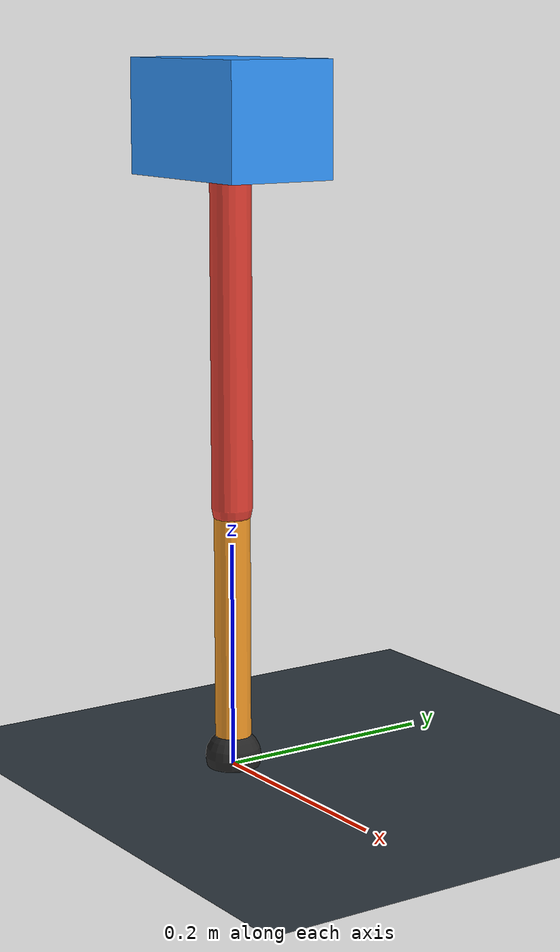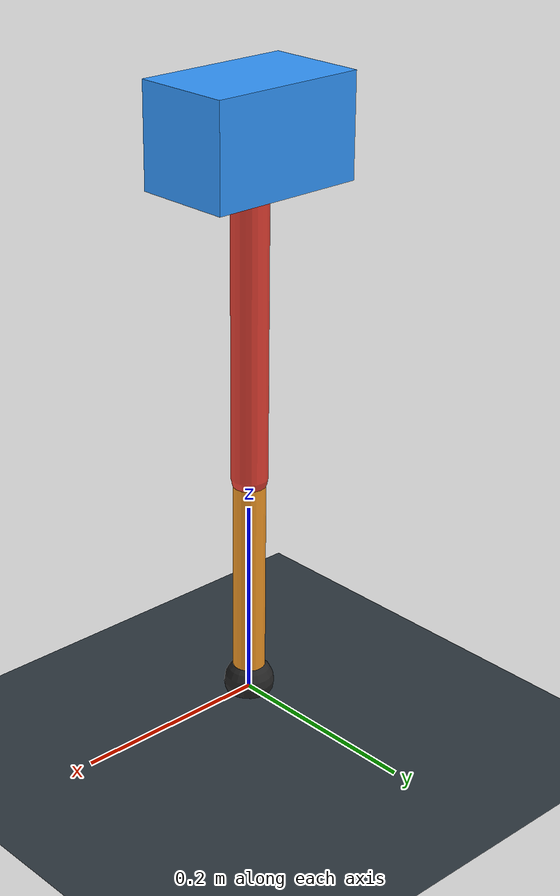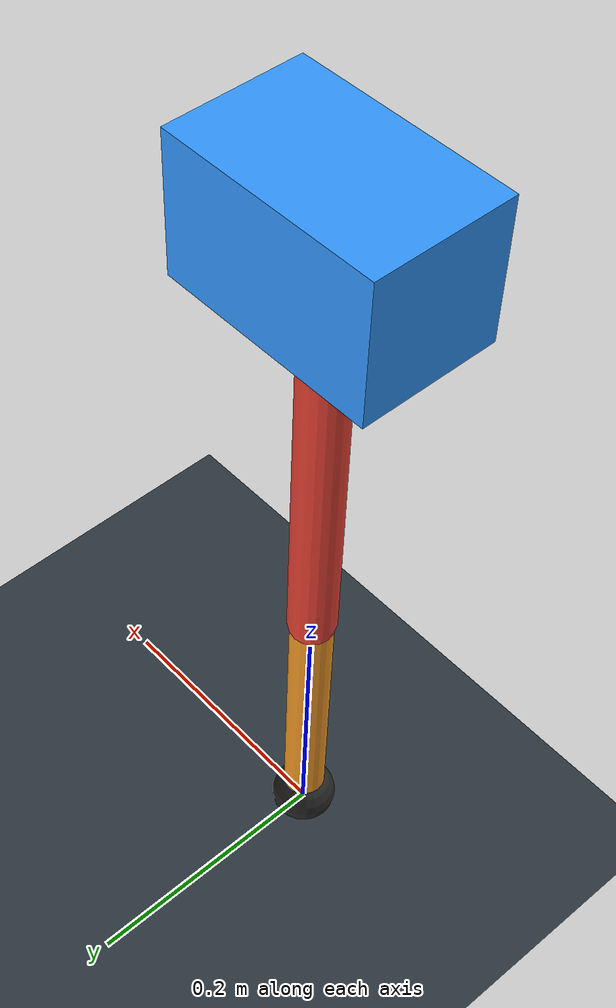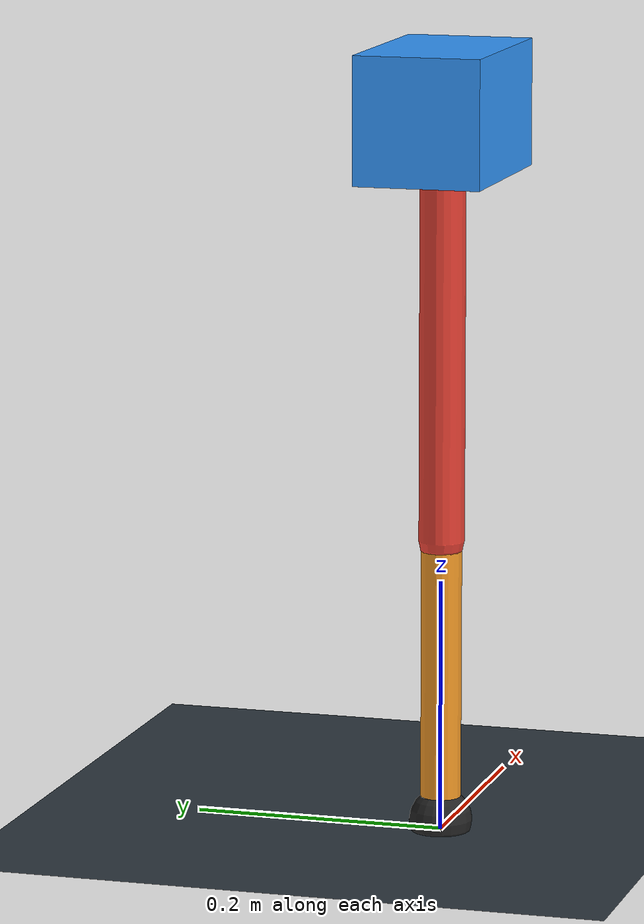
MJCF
<mujoco model="single_axis_two_bar">
  <compiler angle="radian" inertiafromgeom="true"/>
  <option timestep="0.001" integrator="implicitfast" gravity="0 0 -9.81"/>
  <default>
    <joint damping="0.08"/>
    <geom friction="1.2 0.01 0.0001" condim="3"/>
  </default>
  <worldbody>
    <geom name="floor" type="plane" size="5 5 0.1" rgba="0.18 0.22 0.25 1"/>
    <body name="carriage" pos="0 0 0.5710821459219945">
      <joint name="pole_slide" type="slide" axis="0 0 1"/>
      <geom name="payload" type="box" size="0.08 0.05 0.05" mass="2.5973952474020754" rgba="0.2 0.6 1 1"/>
      <body name="thigh" pos="0 0 0">
        <joint name="hip" type="hinge" axis="0 1 0"/>
        <geom name="thigh_link" type="capsule" fromto="0 0 0 0 0 -0.33846931631324917" size="0.018" mass="0.24116386035060575" rgba="0.9 0.25 0.2 1"/>
        <body name="shank" pos="0 0 -0.33846931631324917">
          <joint name="knee" type="hinge" axis="0 1 0"/>
          <geom name="shank_link" type="capsule" fromto="0 0 0 0 0 -0.2245019681424152" size="0.016" mass="0.15996061883324758" rgba="0.95 0.6 0.15 1"/>
          <geom name="foot" type="sphere" pos="0 0 -0.2245019681424152" size="0.025" mass="0.03" rgba="0.15 0.15 0.15 1"/>
          <site name="toe" pos="0 0 -0.2245019681424152" size="0.008"/>
        </body>
      </body>
    </body>
  </worldbody>
  <actuator>
    <motor name="hip_motor" joint="hip" ctrlrange="-30.480592101820495 30.480592101820495"/>
    <motor name="knee_motor" joint="knee" ctrlrange="-105.70527850611568 105.70527850611568"/>
  </actuator>
</mujoco>
